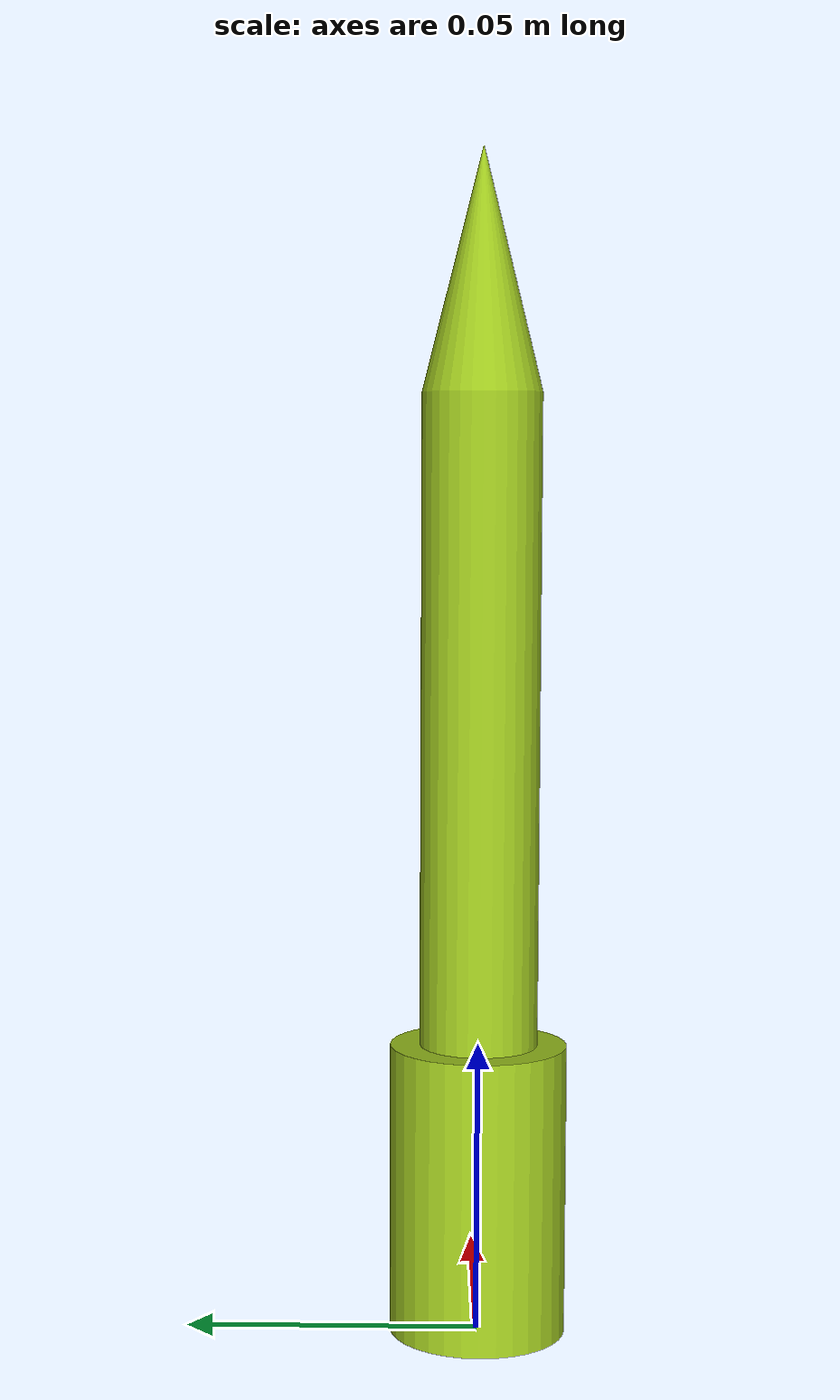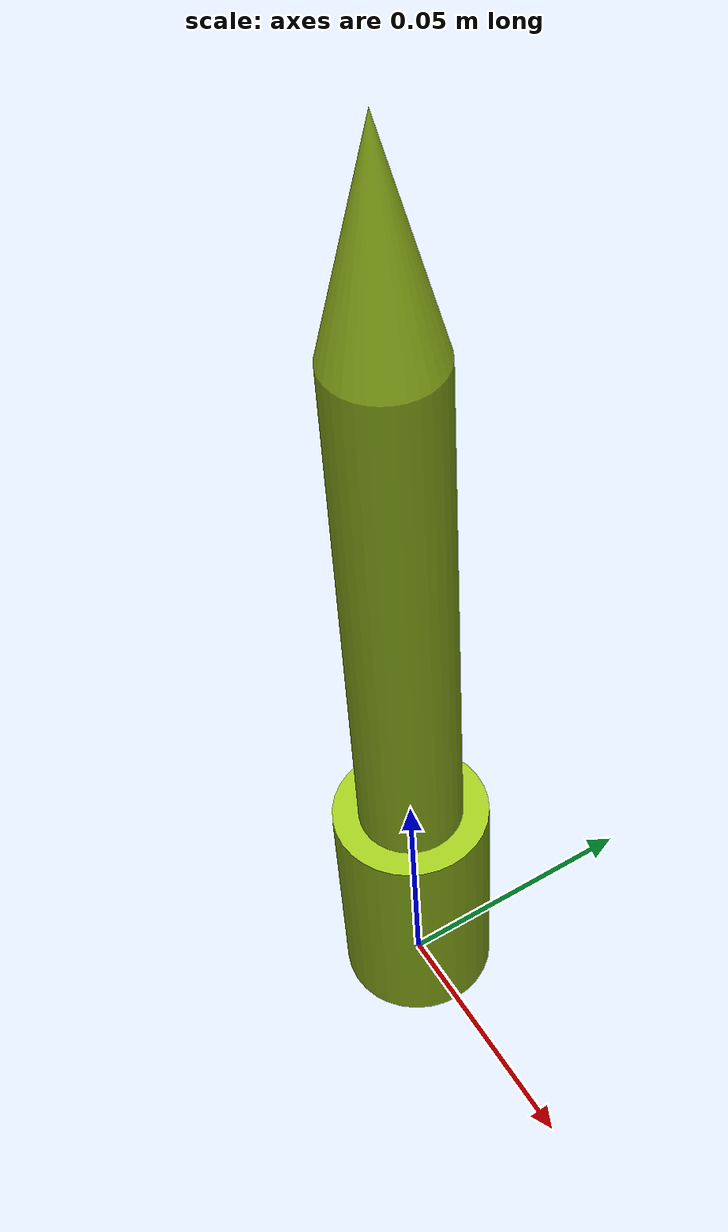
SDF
<?xml version="1.0" ?>
<sdf version="1.9">
  <model name="probe_yellow_green">
    <static>true</static>
    <link name="link">
      <!-- collision kept as a simple bounding cylinder (0-0.20m tall, 15mm radius)
           for cheap physics/lidar interaction; the visual mesh carries the real shape -->
      <collision name="collision">
        <pose>0 0 0.1 0 0 0</pose>
        <geometry>
          <cylinder>
            <radius>0.015</radius>
            <length>0.2</length>
          </cylinder>
        </geometry>
      </collision>
      <visual name="visual">
        <geometry>
          <mesh>
            <uri>model://probe_yellow_green/probe.stl</uri>
          </mesh>
        </geometry>
        <material>
          <ambient>0.62 0.78 0.12 1</ambient>
          <diffuse>0.62 0.78 0.12 1</diffuse>
          <specular>0.15 0.15 0.15 1</specular>
          <emissive>0 0 0 1</emissive>
        </material>
      </visual>
    </link>
  </model>
</sdf>
